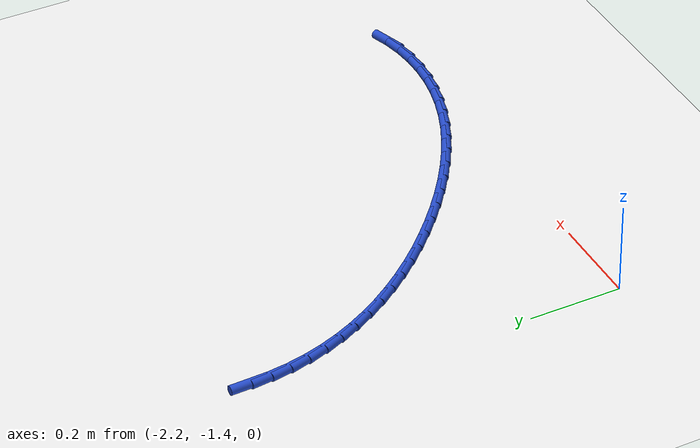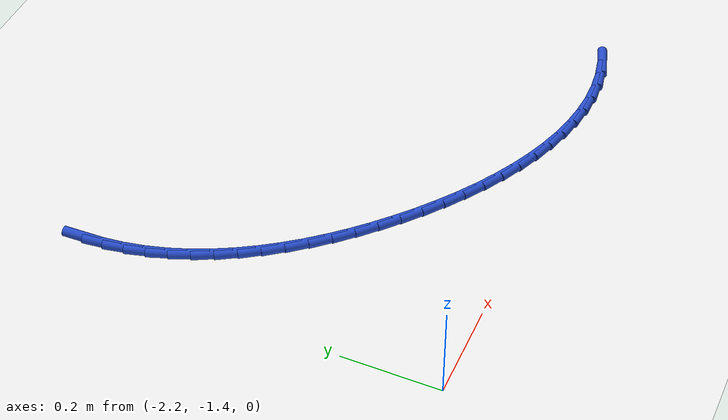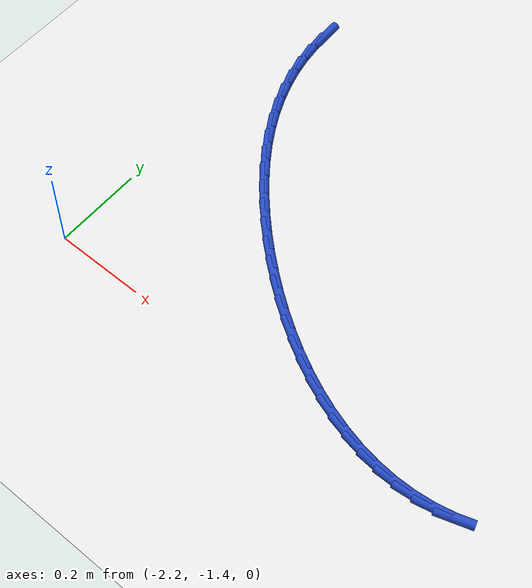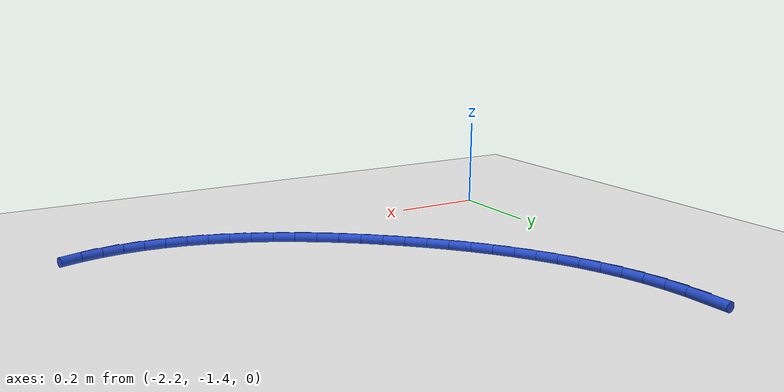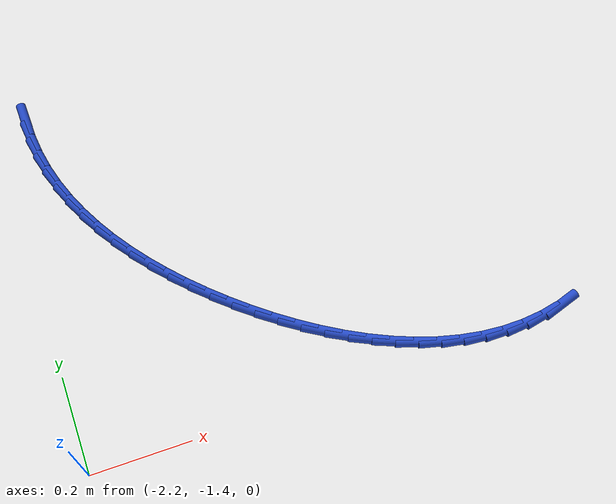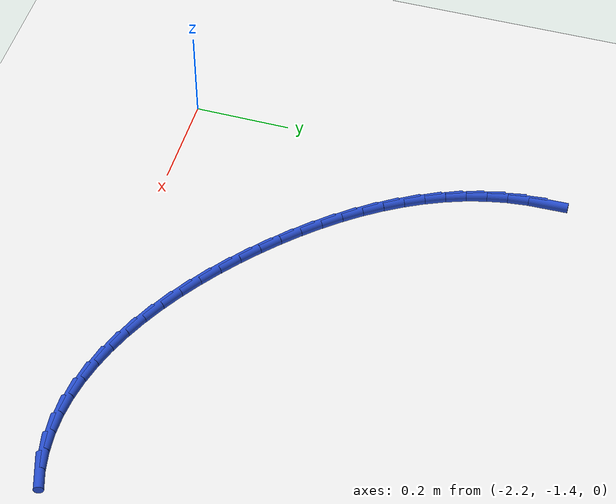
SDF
<sdf version="1.6">
 <world name="default">
  <model name="ground_plane">
   <static>1</static>
   <link name="link">
    <collision name="collision">
     <geometry><plane><normal>0 0 1</normal><size>100 100</size></plane></geometry>
     <surface><friction><ode><mu>100</mu><mu2>50</mu2></ode></friction></surface>
    </collision>
    <visual name="visual">
     <cast_shadows>0</cast_shadows>
     <geometry><plane><normal>0 0 1</normal><size>100 100</size></plane></geometry>
     <material>
      <script><uri>file://media/materials/scripts/gazebo.material</uri><name>Gazebo/WhiteGlow</name></script>
     </material>
    </visual>
   </link>
  </model>
  <model name="line">
   <link name="link_104">
    <pose>-2.129864004748726 -0.628535158059204 0.01 0 1.57 -1.54444641851583</pose>
    <collision name="collision">
     <geometry><cylinder><radius>0.01</radius><length>0.08</length></cylinder></geometry>
    </collision>
    <visual name="visual">
     <material>
      <script><name>Gazebo/Blue</name><uri>file://media/materials/scripts/gazebo.material</uri></script>
     </material>
     <geometry><cylinder><radius>0.01</radius><length>0.08</length></cylinder></geometry>
    </visual>
   </link>
   <link name="link_105">
    <pose>-2.1287334226068784 -0.671431719850331 0.01 0 1.57 -1.4597734952808048</pose>
    <collision name="collision">
     <geometry><cylinder><radius>0.01</radius><length>0.08</length></cylinder></geometry>
    </collision>
    <visual name="visual">
     <material>
      <script><name>Gazebo/Blue</name><uri>file://media/materials/scripts/gazebo.material</uri></script>
     </material>
     <geometry><cylinder><radius>0.01</radius><length>0.08</length></cylinder></geometry>
    </visual>
   </link>
   <link name="link_106">
    <pose>-2.124013828325105 -0.7137670387743484 0.01 0 1.57 -1.3772699354302345</pose>
    <collision name="collision">
     <geometry><cylinder><radius>0.01</radius><length>0.08</length></cylinder></geometry>
    </collision>
    <visual name="visual">
     <material>
      <script><name>Gazebo/Blue</name><uri>file://media/materials/scripts/gazebo.material</uri></script>
     </material>
     <geometry><cylinder><radius>0.01</radius><length>0.08</length></cylinder></geometry>
    </visual>
   </link>
   <link name="link_107">
    <pose>-2.115836628117471 -0.7554918852693774 0.01 0 1.57 -1.2987275681934982</pose>
    <collision name="collision">
     <geometry><cylinder><radius>0.01</radius><length>0.08</length></cylinder></geometry>
    </collision>
    <visual name="visual">
     <material>
      <script><name>Gazebo/Blue</name><uri>file://media/materials/scripts/gazebo.material</uri></script>
     </material>
     <geometry><cylinder><radius>0.01</radius><length>0.08</length></cylinder></geometry>
    </visual>
   </link>
   <link name="link_108">
    <pose>-2.1043782351772293 -0.7965633621680378 0.01 0 1.57 -1.2246248301953644</pose>
    <collision name="collision">
     <geometry><cylinder><radius>0.01</radius><length>0.08</length></cylinder></geometry>
    </collision>
    <visual name="visual">
     <material>
      <script><name>Gazebo/Blue</name><uri>file://media/materials/scripts/gazebo.material</uri></script>
     </material>
     <geometry><cylinder><radius>0.01</radius><length>0.08</length></cylinder></geometry>
    </visual>
   </link>
   <link name="link_109">
    <pose>-2.089815062697631 -0.8369385723029503 0.01 0 1.57 -1.1551976301334876</pose>
    <collision name="collision">
     <geometry><cylinder><radius>0.01</radius><length>0.08</length></cylinder></geometry>
    </collision>
    <visual name="visual">
     <material>
      <script><name>Gazebo/Blue</name><uri>file://media/materials/scripts/gazebo.material</uri></script>
     </material>
     <geometry><cylinder><radius>0.01</radius><length>0.08</length></cylinder></geometry>
    </visual>
   </link>
   <link name="link_110">
    <pose>-2.072323523871929 -0.876574618506733 0.01 0 1.57 -1.0904787513733265</pose>
    <collision name="collision">
     <geometry><cylinder><radius>0.01</radius><length>0.08</length></cylinder></geometry>
    </collision>
    <visual name="visual">
     <material>
      <script><name>Gazebo/Blue</name><uri>file://media/materials/scripts/gazebo.material</uri></script>
     </material>
     <geometry><cylinder><radius>0.01</radius><length>0.08</length></cylinder></geometry>
    </visual>
   </link>
   <link name="link_111">
    <pose>-2.0520800318933747 -0.9154286036120064 0.01 0 1.57 -1.0303455848269538</pose>
    <collision name="collision">
     <geometry><cylinder><radius>0.01</radius><length>0.08</length></cylinder></geometry>
    </collision>
    <visual name="visual">
     <material>
      <script><name>Gazebo/Blue</name><uri>file://media/materials/scripts/gazebo.material</uri></script>
     </material>
     <geometry><cylinder><radius>0.01</radius><length>0.08</length></cylinder></geometry>
    </visual>
   </link>
   <link name="link_112">
    <pose>-2.0292609999552225 -0.9534576304513905 0.01 0 1.57 -0.9745667924646111</pose>
    <collision name="collision">
     <geometry><cylinder><radius>0.01</radius><length>0.08</length></cylinder></geometry>
    </collision>
    <visual name="visual">
     <material>
      <script><name>Gazebo/Blue</name><uri>file://media/materials/scripts/gazebo.material</uri></script>
     </material>
     <geometry><cylinder><radius>0.01</radius><length>0.08</length></cylinder></geometry>
    </visual>
   </link>
   <link name="link_113">
    <pose>-2.0040428412507225 -0.9906188018575046 0.01 0 1.57 -0.9228424338539887</pose>
    <collision name="collision">
     <geometry><cylinder><radius>0.01</radius><length>0.08</length></cylinder></geometry>
    </collision>
    <visual name="visual">
     <material>
      <script><name>Gazebo/Blue</name><uri>file://media/materials/scripts/gazebo.material</uri></script>
     </material>
     <geometry><cylinder><radius>0.01</radius><length>0.08</length></cylinder></geometry>
    </visual>
   </link>
   <link name="link_114">
    <pose>-1.9766019689731287 -1.026869220662969 0.01 0 1.57 -0.8748354158748408</pose>
    <collision name="collision">
     <geometry><cylinder><radius>0.01</radius><length>0.08</length></cylinder></geometry>
    </collision>
    <visual name="visual">
     <material>
      <script><name>Gazebo/Blue</name><uri>file://media/materials/scripts/gazebo.material</uri></script>
     </material>
     <geometry><cylinder><radius>0.01</radius><length>0.08</length></cylinder></geometry>
    </visual>
   </link>
   <link name="link_115">
    <pose>-1.9471147963156918 -1.062165989700404 0.01 0 1.57 -0.8301943113828288</pose>
    <collision name="collision">
     <geometry><cylinder><radius>0.01</radius><length>0.08</length></cylinder></geometry>
    </collision>
    <visual name="visual">
     <material>
      <script><name>Gazebo/Blue</name><uri>file://media/materials/scripts/gazebo.material</uri></script>
     </material>
     <geometry><cylinder><radius>0.01</radius><length>0.08</length></cylinder></geometry>
    </visual>
   </link>
   <link name="link_116">
    <pose>-1.9157577364716663 -1.0964662118024278 0.01 0 1.57 -0.7885687153223152</pose>
    <collision name="collision">
     <geometry><cylinder><radius>0.01</radius><length>0.08</length></cylinder></geometry>
    </collision>
    <visual name="visual">
     <material>
      <script><name>Gazebo/Blue</name><uri>file://media/materials/scripts/gazebo.material</uri></script>
     </material>
     <geometry><cylinder><radius>0.01</radius><length>0.08</length></cylinder></geometry>
    </visual>
   </link>
   <link name="link_117">
    <pose>-1.8827072026343032 -1.1297269898016613 0.01 0 1.57 -0.7496186831484464</pose>
    <collision name="collision">
     <geometry><cylinder><radius>0.01</radius><length>0.08</length></cylinder></geometry>
    </collision>
    <visual name="visual">
     <material>
      <script><name>Gazebo/Blue</name><uri>file://media/materials/scripts/gazebo.material</uri></script>
     </material>
     <geometry><cylinder><radius>0.01</radius><length>0.08</length></cylinder></geometry>
    </visual>
   </link>
   <link name="link_118">
    <pose>-1.8481396079968555 -1.1619054265307236 0.01 0 1.57 -0.7124429642455133</pose>
    <collision name="collision">
     <geometry><cylinder><radius>0.01</radius><length>0.08</length></cylinder></geometry>
    </collision>
    <visual name="visual">
     <material>
      <script><name>Gazebo/Blue</name><uri>file://media/materials/scripts/gazebo.material</uri></script>
     </material>
     <geometry><cylinder><radius>0.01</radius><length>0.08</length></cylinder></geometry>
    </visual>
   </link>
   <link name="link_119">
    <pose>-1.8122224383390113 -1.1929301537443882 0.01 0 1.57 -0.6741776031640583</pose>
    <collision name="collision">
     <geometry><cylinder><radius>0.01</radius><length>0.08</length></cylinder></geometry>
    </collision>
    <visual name="visual">
     <material>
      <script><name>Gazebo/Blue</name><uri>file://media/materials/scripts/gazebo.material</uri></script>
     </material>
     <geometry><cylinder><radius>0.01</radius><length>0.08</length></cylinder></geometry>
    </visual>
   </link>
   <link name="link_120">
    <pose>-1.7750844401481103 -1.222606256842102 0.01 0 1.57 -0.6336998617198961</pose>
    <collision name="collision">
     <geometry><cylinder><radius>0.01</radius><length>0.08</length></cylinder></geometry>
    </collision>
    <visual name="visual">
     <material>
      <script><name>Gazebo/Blue</name><uri>file://media/materials/scripts/gazebo.material</uri></script>
     </material>
     <geometry><cylinder><radius>0.01</radius><length>0.08</length></cylinder></geometry>
    </visual>
   </link>
   <link name="link_121">
    <pose>-1.736843854505122 -1.2507053176513663 0.01 0 1.57 -0.5905336079187679</pose>
    <collision name="collision">
     <geometry><cylinder><radius>0.01</radius><length>0.08</length></cylinder></geometry>
    </collision>
    <visual name="visual">
     <material>
      <script><name>Gazebo/Blue</name><uri>file://media/materials/scripts/gazebo.material</uri></script>
     </material>
     <geometry><cylinder><radius>0.01</radius><length>0.08</length></cylinder></geometry>
    </visual>
   </link>
   <link name="link_122">
    <pose>-1.6976189222973506 -1.2769989173820562 0.01 0 1.57 -0.5441726185843234</pose>
    <collision name="collision">
     <geometry><cylinder><radius>0.01</radius><length>0.08</length></cylinder></geometry>
    </collision>
    <visual name="visual">
     <material>
      <script><name>Gazebo/Blue</name><uri>file://media/materials/scripts/gazebo.material</uri></script>
     </material>
     <geometry><cylinder><radius>0.01</radius><length>0.08</length></cylinder></geometry>
    </visual>
   </link>
   <link name="link_123">
    <pose>-1.6575278844120998 -1.301258637244044 0.01 0 1.57 -0.4940788468080129</pose>
    <collision name="collision">
     <geometry><cylinder><radius>0.01</radius><length>0.08</length></cylinder></geometry>
    </collision>
    <visual name="visual">
     <material>
      <script><name>Gazebo/Blue</name><uri>file://media/materials/scripts/gazebo.material</uri></script>
     </material>
     <geometry><cylinder><radius>0.01</radius><length>0.08</length></cylinder></geometry>
    </visual>
   </link>
   <link name="link_124">
    <pose>-1.6166889817366747 -1.323256058447203 0.01 0 1.57 -0.4396866642250934</pose>
    <collision name="collision">
     <geometry><cylinder><radius>0.01</radius><length>0.08</length></cylinder></geometry>
    </collision>
    <visual name="visual">
     <material>
      <script><name>Gazebo/Blue</name><uri>file://media/materials/scripts/gazebo.material</uri></script>
     </material>
     <geometry><cylinder><radius>0.01</radius><length>0.08</length></cylinder></geometry>
    </visual>
   </link>
   <link name="link_125">
    <pose>-1.5752204551583795 -1.3427627622014073 0.01 0 1.57 -0.3804160941647354</pose>
    <collision name="collision">
     <geometry><cylinder><radius>0.01</radius><length>0.08</length></cylinder></geometry>
    </collision>
    <visual name="visual">
     <material>
      <script><name>Gazebo/Blue</name><uri>file://media/materials/scripts/gazebo.material</uri></script>
     </material>
     <geometry><cylinder><radius>0.01</radius><length>0.08</length></cylinder></geometry>
    </visual>
   </link>
   <link name="link_126">
    <pose>-1.5332405455645177 -1.3595503297165292 0.01 0 1.57 -0.3156991292486651</pose>
    <collision name="collision">
     <geometry><cylinder><radius>0.01</radius><length>0.08</length></cylinder></geometry>
    </collision>
    <visual name="visual">
     <material>
      <script><name>Gazebo/Blue</name><uri>file://media/materials/scripts/gazebo.material</uri></script>
     </material>
     <geometry><cylinder><radius>0.01</radius><length>0.08</length></cylinder></geometry>
    </visual>
   </link>
   <link name="link_127">
    <pose>-1.4908674938423956 -1.3733903422024423 0.01 0 1.57 -0.245023912442668</pose>
    <collision name="collision">
     <geometry><cylinder><radius>0.01</radius><length>0.08</length></cylinder></geometry>
    </collision>
    <visual name="visual">
     <material>
      <script><name>Gazebo/Blue</name><uri>file://media/materials/scripts/gazebo.material</uri></script>
     </material>
     <geometry><cylinder><radius>0.01</radius><length>0.08</length></cylinder></geometry>
    </visual>
   </link>
   <link name="link_128">
    <pose>-1.4482195408793161 -1.3840543808690189 0.01 0 1.57 -0.1680009952244359</pose>
    <collision name="collision">
     <geometry><cylinder><radius>0.01</radius><length>0.08</length></cylinder></geometry>
    </collision>
    <visual name="visual">
     <material>
      <script><name>Gazebo/Blue</name><uri>file://media/materials/scripts/gazebo.material</uri></script>
     </material>
     <geometry><cylinder><radius>0.01</radius><length>0.08</length></cylinder></geometry>
    </visual>
   </link>
   <link name="link_129">
    <pose>-1.405414927562584 -1.391314026926133 0.01 0 1.57 -0.08445265940923355</pose>
    <collision name="collision">
     <geometry><cylinder><radius>0.01</radius><length>0.08</length></cylinder></geometry>
    </collision>
    <visual name="visual">
     <material>
      <script><name>Gazebo/Blue</name><uri>file://media/materials/scripts/gazebo.material</uri></script>
     </material>
     <geometry><cylinder><radius>0.01</radius><length>0.08</length></cylinder></geometry>
    </visual>
   </link>
   <link name="link_130">
    <pose>-1.3625718947795038 -1.3949408615836583 0.01 0 1.57 0.005481187623037103</pose>
    <collision name="collision">
     <geometry><cylinder><radius>0.01</radius><length>0.08</length></cylinder></geometry>
    </collision>
    <visual name="visual">
     <material>
      <script><name>Gazebo/Blue</name><uri>file://media/materials/scripts/gazebo.material</uri></script>
     </material>
     <geometry><cylinder><radius>0.01</radius><length>0.08</length></cylinder></geometry>
    </visual>
   </link>
   <link name="link_131">
    <pose>-1.3198086834173786 -1.3947064660514665 0.01 0 1.57 0.1012391965249645</pose>
    <collision name="collision">
     <geometry><cylinder><radius>0.01</radius><length>0.08</length></cylinder></geometry>
    </collision>
    <visual name="visual">
     <material>
      <script><name>Gazebo/Blue</name><uri>file://media/materials/scripts/gazebo.material</uri></script>
     </material>
     <geometry><cylinder><radius>0.01</radius><length>0.08</length></cylinder></geometry>
    </visual>
   </link>
   <link name="link_132">
    <pose>-1.2772435343635145 -1.3903824215394316 0.01 0 1.57 0.20176922586583537</pose>
    <collision name="collision">
     <geometry><cylinder><radius>0.01</radius><length>0.08</length></cylinder></geometry>
    </collision>
    <visual name="visual">
     <material>
      <script><name>Gazebo/Blue</name><uri>file://media/materials/scripts/gazebo.material</uri></script>
     </material>
     <geometry><cylinder><radius>0.01</radius><length>0.08</length></cylinder></geometry>
    </visual>
   </link>
   <link name="link_133">
    <pose>-1.234994688505215 -1.3817403092574267 0.01 0 1.57 0.31071779068619987</pose>
    <collision name="collision">
     <geometry><cylinder><radius>0.01</radius><length>0.08</length></cylinder></geometry>
    </collision>
    <visual name="visual">
     <material>
      <script><name>Gazebo/Blue</name><uri>file://media/materials/scripts/gazebo.material</uri></script>
     </material>
     <geometry><cylinder><radius>0.01</radius><length>0.08</length></cylinder></geometry>
    </visual>
   </link>
  </model>
 </world>
</sdf>
